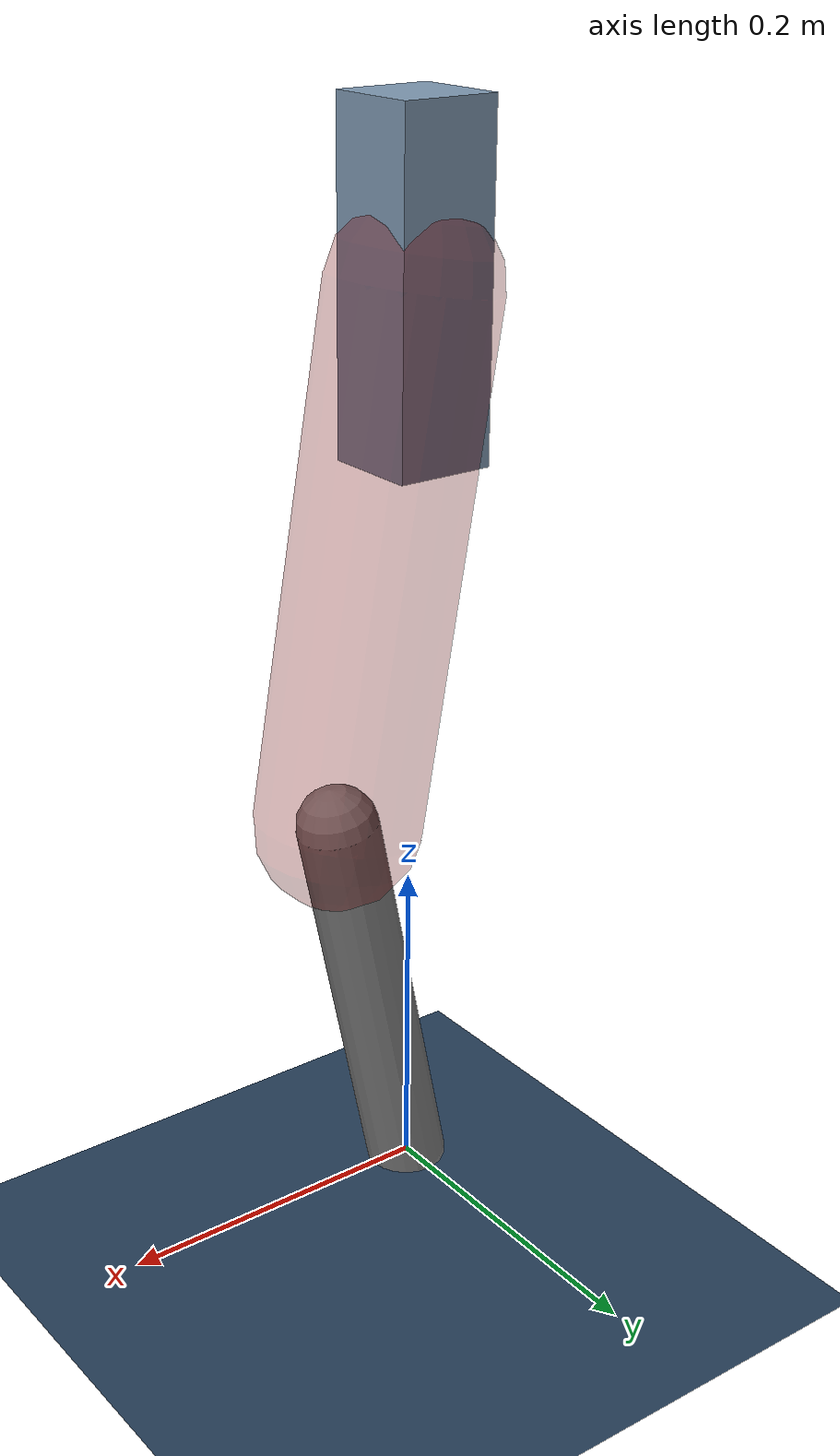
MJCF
<mujoco model="Hopper2D">
	<compiler inertiafromgeom="true" angle="radian" />
	<option timestep="0.001" integrator="implicit" cone="elliptic" solver="Newton" tolerance="1e-10" />

	<default>
		<geom contype="1" conaffinity="1" condim="3" friction="2 0.005 0.0001" solref="0.005 1" />
		<joint limited="true" damping="0.1" />
	</default>

	<asset>
		<texture name="skybox" type="skybox" builtin="gradient" rgb1=".4 .6 .8" rgb2="0 0 0" width="800" height="800" />
		<texture name="grid" type="2d" builtin="checker" rgb1=".1 .2 .3" rgb2=".2 .3 .4" width="300" height="300" mark="edge" markrgb=".2 .3 .4" />
		<material name="ground" texture="grid" texrepeat="1 1" texuniform="true" reflectance="0.1" />
		<material name="leg" rgba="0.5 0.6 0.7 1" />
	</asset>

	<worldbody>

		<geom name="floor" type="plane" size="5 5 0.25" material="ground" />

		<light directional="false" diffuse="0.8 0.8 0.8" specular="0.3 0.3 0.3" pos="0 0 2" dir="0 0 -1" />
		<light mode="targetbodycom" target="base" directional="false" diffuse="0.8 0.8 0.8" specular="0.3 0.3 0.3" pos="0 0 2" dir="0 0 -1" />

		<camera name="fixed" pos="0 -2 1" xyaxes="1 0 0 0 0 1" />
		<camera name="tracking" mode="trackcom" pos="0 -3 1" />

		<body name="root" pos="0 0 0.5599738595645075">
			<joint name="slide_x" type="slide" axis="1 0 0" range="-100 100" />
			<joint name="slide_z" type="slide" axis="0 0 1" range="0 10" />

			<body name="base" pos="0 0 0">
				<geom name="torso" type="box" size="0.03 0.03 0.1" mass="1.664" material="leg" />

				<body name="link1" pos="0 0 0" euler="0 1.4020762356836647 0">
					<joint type="hinge" axis="0 -1 0" pos="0 0 0" name="hinge1" limited="true" range="-3.14 3.14" stiffness="0" damping="0.1" />
					<geom name="thigh" type="capsule" fromto="0 0 0 0.3147249949756622 0 0" size="0.05" rgba="0.5 0 0 0.3" mass="1.0287574864342879" />

					<body name="link2" pos="0.3147249949756622 0 0" euler="0 0.37727706213257667 0">
						<joint type="hinge" axis="0 -1 0" pos="0 0 0" name="hinge2" limited="true" range="-3.14 3.14" stiffness="0" damping="0.1" />
						<geom name="shank" type="capsule" fromto="0 0 0 0.2552488645888453 0 0" size="0.025" mass="0.4468239781299608" />

					</body>
				</body>
			</body>
		</body>
	</worldbody>

	<actuator>
		<motor name="torque1" joint="hinge1" ctrlrange="-37.443061603601286 37.443061603601286" ctrllimited="true" gear="1" />
		<motor name="torque2" joint="hinge2" ctrlrange="-61.1211502860926 61.1211502860926" ctrllimited="true" gear="1" />
	</actuator>
</mujoco>
